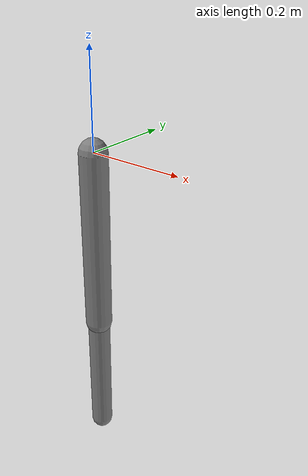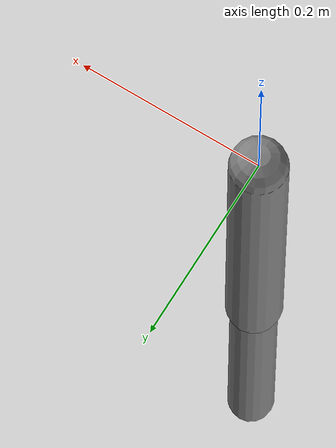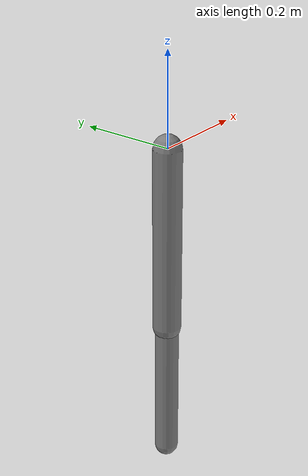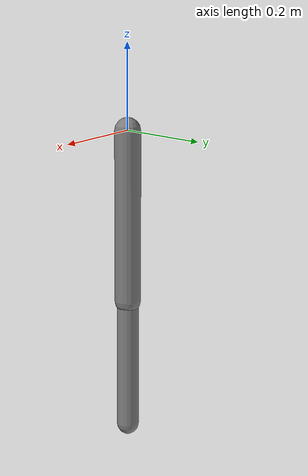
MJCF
<mujoco model="inverse-stress-test">
  <compiler angle="radian"/>
  <option gravity="0 0 -9.81" timestep="0.002" integrator="RK4">
    <flag energy="enable"/>
  </option>

  <default>
    <geom contype="0" conaffinity="0"/>
  </default>

  <worldbody>
    <body name="upper" pos="0 0 0">
      <joint name="shoulder" type="hinge" axis="0 1 0"/>
      <inertial pos="0 0 -0.2" mass="2.0" diaginertia="0.02 0.02 0.005"/>
      <geom type="capsule" size="0.03" fromto="0 0 0  0 0 -0.4"/>
      <body name="lower" pos="0 0 -0.4">
        <joint name="elbow" type="hinge" axis="0 1 0"/>
        <inertial pos="0 0 -0.15" mass="1.0" diaginertia="0.008 0.008 0.002"/>
        <geom type="capsule" size="0.025" fromto="0 0 0  0 0 -0.3"/>
        <site name="end_effector" pos="0 0 -0.3"/>
      </body>
    </body>
  </worldbody>

  <actuator>
    <motor name="shoulder_motor" joint="shoulder" gear="1"/>
    <motor name="elbow_motor" joint="elbow" gear="1"/>
  </actuator>
</mujoco>
